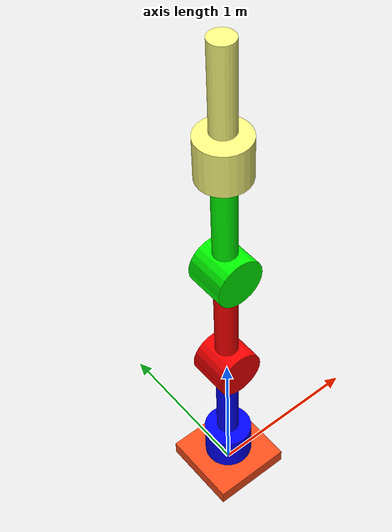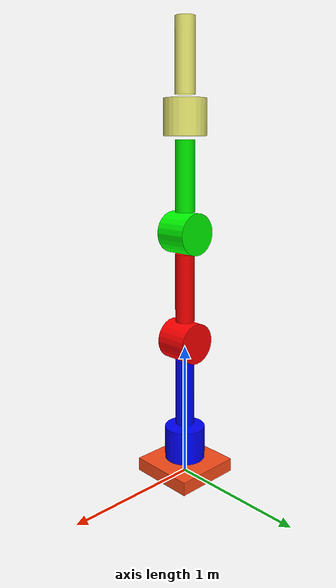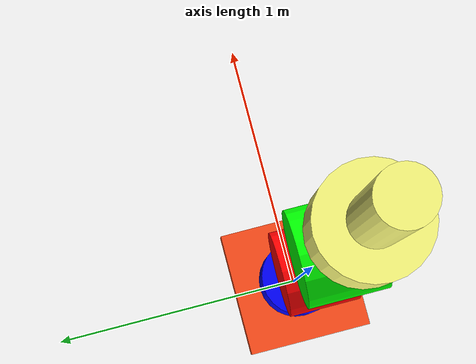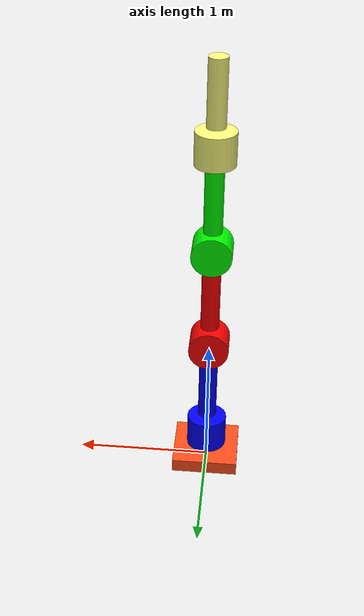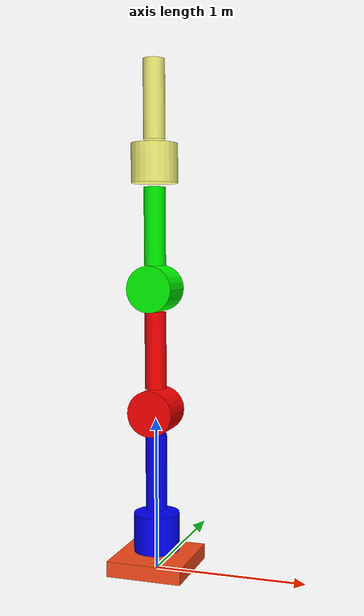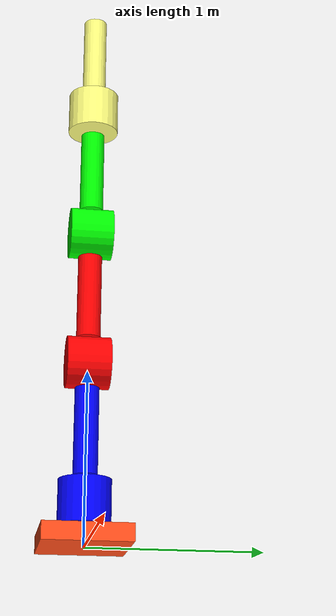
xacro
<?xml version="1.0"?>
<robot xmlns:xacro="http://www.ros.org/wiki/xacro">
    <xacro:include filename="inertia.xacro" />

    <xacro:property name="PI" value="3.1416" />
    <xacro:property name="effort" value="30" />
    <xacro:property name="velocity" value="10" />

    <xacro:property name="box_base" value="0.5" />
    <xacro:property name="box_length" value="0.1" />

    <xacro:property name="link_cylinder_radius" value="0.07" />
    <xacro:property name="link_cylinder_length" value="0.50" />

    <xacro:property name="joint_cylinder_radius" value="0.15" />
    <xacro:property name="joint_cylinder_length" value="0.25" />

    <xacro:property name="link_to_joint_distance" value="${joint_cylinder_radius + link_cylinder_length}" />
    <xacro:property name="joint_to_link_distance" value="${joint_cylinder_radius}" />

    <xacro:macro name="default_transmission" params="number">
        <transmission name="transmission_${number}">
            <type>transmission_interface/SimpleTransmission</type>
            <joint name="joint_${number}">
                <hardwareInterface>hardware_interface/PositionJointInterface</hardwareInterface>
            </joint>
            <actuator name="motor_${number}">
                <hardwareInterface>hardware_interface/PositionJointInterface</hardwareInterface>
                <mechanicalReduction>1</mechanicalReduction>
            </actuator>
        </transmission>
    </xacro:macro>

    <link name="world" />

    <link name="base_link" />

     <joint name="world_joint" type="fixed">
        <parent link="world"/>
        <child link="base_link"/>
        <origin xyz="0.0 0.0 0.0" />
        <axis xyz= "0 0 0" />
    </joint>

    <link name="base_footprint" >
        <visual>
            <origin xyz="0.0 0.0 ${box_length/2}"/>
            <geometry>
                <box size="${box_base} ${box_base} ${box_length}"/>
            </geometry>
            <material name="orange">
                <color rgba="1 0.3 0.1 1"/>
            </material>
        </visual>
        <collision>
            <origin xyz="0.0 0.0 ${box_length}"/>
            <geometry>
                <box size="${box_base} ${box_base} ${box_length}"/>
            </geometry>
        </collision>
        <xacro:inertial_box mass="1.25" x="${box_base}" y="${box_base}" z="${box_length}">
            <origin xyz="0.0 0.0 ${box_length}" rpy="0 0 0"/>
        </xacro:inertial_box>
    </link>

    <gazebo reference="base_footprint">
        <material>Gazebo/Orange</material>
    </gazebo>

    <joint name="base_joint" type="fixed">
        <parent link="base_link"/>
        <child link="base_footprint"/>
        <origin xyz="0.0 0.0 0.0"/>
        <axis xyz= "0 0 0" />
    </joint>

    <link name="link_1" >
        <visual>
            <origin xyz= "0.0 0.0 0.0" rpy= "0.0 0.0 0.0"/>
            <geometry>
                <cylinder radius="${joint_cylinder_radius}" length="${joint_cylinder_length}"/>
            </geometry>
            <material name="blue">
                <color rgba="0 0 1 1"/>
            </material>
        </visual>
        <collision>
            <origin xyz= "0.0 0.0 0.0" rpy= "${PI/2} 0.0 0.0"/>
            <geometry>
                <cylinder radius="${joint_cylinder_radius}"  length="${joint_cylinder_length}"/>
            </geometry>
        </collision>
        <xacro:inertial_cylinder mass= "0.1" length= "${joint_cylinder_length}" radius="${joint_cylinder_radius}" >
            <origin xyz= "0.0 0.0 0.0" rpy= "${PI/2} 0.0 0.0"/>
        </xacro:inertial_cylinder>
    </link>

    <gazebo reference="link_1">
        <material>Gazebo/Blue</material>
    </gazebo>

    <joint name="joint_1" type="revolute">
        <parent link="base_link"/>
        <child link="link_1"/>
        <origin xyz="0.0 0.0 ${box_length + joint_cylinder_radius}" />
        <limit lower="-${PI/2}" upper="${PI/2}" effort="${effort}" velocity="${velocity}"/>
        <axis xyz= "0 0 1" />
        <dynamics friction="1.5" damping="1.5" />
    </joint>

    <link name="link_1_fixed_part" >
        <visual>
            <origin xyz="0.0 0.0 ${link_cylinder_length/2}" rpy="0 0 0"/>
            <geometry>
                <cylinder radius="${link_cylinder_radius}" length="${link_cylinder_length}"/>
            </geometry>
            <material name="blue">
                <color rgba="0 0 1 1"/>
            </material>
        </visual>
        <collision>
            <origin xyz= "0.0 0.0 ${link_cylinder_length/2}" rpy="0 0 0"/>
            <geometry>
                <cylinder radius="${link_cylinder_radius}" length="${link_cylinder_length}"/>
            </geometry>
        </collision>
        <xacro:inertial_cylinder mass= "0.25" length= "${link_cylinder_length}" radius="${link_cylinder_radius}" >
            <origin xyz= "0.0 0.0 ${link_cylinder_length/2}" rpy="0 0 0"/>
        </xacro:inertial_cylinder>
    </link>

    <gazebo reference="link_1_fixed_part">
        <material>Gazebo/Blue</material>
    </gazebo>

    <joint name="link_1_fixed_joint" type="fixed">
        <parent link="link_1"/>
        <child link="link_1_fixed_part"/>
        <origin xyz="0.0 0.0 ${joint_to_link_distance}" />
        <axis xyz= "0 0 0" />
        <dynamics friction="1.5" damping="1.5" />
    </joint>

    <link name="link_2" >
        <visual>
            <origin xyz= "0.0 0.0 0.0" rpy= "${PI/2} 0.0 0.0"/>
            <geometry>
                <cylinder radius="${joint_cylinder_radius}" length="${joint_cylinder_length}"/>
            </geometry>
            <material name="red">
                <color rgba="1 0 0 1"/>
            </material>
        </visual>
        <collision>
            <origin xyz= "0.0 0.0 0.0" rpy= "${PI/2} 0.0 0.0"/>
            <geometry>
                <cylinder radius="${joint_cylinder_radius}"  length="${joint_cylinder_length}"/>
            </geometry>
        </collision>
        <xacro:inertial_cylinder mass= "0.1" length= "${joint_cylinder_length}" radius="${joint_cylinder_radius}" >
            <origin xyz= "0.0 0.0 0.0" rpy= "${PI/2} 0.0 0.0"/>
        </xacro:inertial_cylinder>
     </link>

    <gazebo reference="link_2">
        <material>Gazebo/Red</material>
    </gazebo>

    <joint name="joint_2" type="revolute">
        <parent link="link_1_fixed_part"/>
        <child link="link_2"/>
        <origin xyz="0.0 0.0 ${link_to_joint_distance}" />
        <axis xyz="0 1 0"/>
        <limit lower="-${PI/2}" upper="${PI/2}" effort="${effort}" velocity="${velocity}"/>
        <axis xyz= "0 1 0" />
        <dynamics friction="1.5" damping="1.5" />
    </joint>

    <link name="link_2_fixed_part" >
        <visual>
            <origin xyz= "0.0 0.0 ${link_cylinder_length/2}" rpy="0 0 0" />
            <geometry>
                <cylinder radius="${link_cylinder_radius}" length="${link_cylinder_length}"/>
            </geometry>
            <material name="red">
                <color rgba="1 0 0 1"/>
            </material>
        </visual>
        <collision>
            <origin xyz= "0.0 0.0 ${link_cylinder_length/2}" rpy="0 0 0" />
            <geometry>
                <cylinder radius="${link_cylinder_radius}" length="${link_cylinder_length}"/>
            </geometry>
        </collision>
        <xacro:inertial_cylinder mass= "0.25" length= "${link_cylinder_length}" radius="${link_cylinder_radius}" >
            <origin xyz= "0.0 0.0 ${link_cylinder_length/2}" rpy="0 0 0" />
        </xacro:inertial_cylinder>
    </link>

    <gazebo reference="link_2_fixed_part">
        <material>Gazebo/Red</material>
    </gazebo>

    <joint name="link_2_fixed_joint" type="fixed">
        <parent link="link_2"/>
        <child link="link_2_fixed_part"/>
        <origin xyz="0.0 0.0 ${joint_to_link_distance}" />
        <axis xyz= "0 0 0" />
        <dynamics friction="1.5" damping="1.5" />
    </joint>

    <link name="link_3" >
        <visual>
            <origin xyz= "0.0 0.0 0.0" rpy= "${PI/2} 0.0 0.0"/>
            <geometry>
                <cylinder radius="${joint_cylinder_radius}" length="${joint_cylinder_length}"/>
            </geometry>
            <material name="green">
                <color rgba="0 1 0 1"/>
            </material>
        </visual>
        <collision>
            <origin xyz= "0.0 0.0 0.0" rpy= "${PI/2} 0.0 0.0"/>
            <geometry>
                <cylinder radius="${joint_cylinder_radius}"  length="${joint_cylinder_length}"/>
            </geometry>
        </collision>
        <xacro:inertial_cylinder mass= "0.1" length= "${joint_cylinder_length}" radius="${joint_cylinder_radius}" >
            <origin xyz= "0.0 0.0 0.0" rpy= "${PI/2} 0.0 0.0"/>
        </xacro:inertial_cylinder>
    </link>

    <gazebo reference="link_3">
        <material>Gazebo/Green</material>
    </gazebo>

    <joint name="joint_3" type="revolute">
        <parent link="link_2_fixed_part"/>
        <child link="link_3"/>
        <origin xyz="0.0 0.0 ${link_to_joint_distance}" />
        <axis xyz="0 1 0"/>
        <limit lower="-${PI/2}" upper="${PI/2}" effort="${effort}" velocity="${velocity}"/>
        <axis xyz= "0 1 0" />
        <dynamics friction="1.5" damping="1.5" />
    </joint>

    <link name="link_3_fixed_part" >
        <visual>
            <origin xyz= "0.0 0.0 ${link_cylinder_length/2}" rpy="0 0 0" />
            <geometry>
                <cylinder radius="${link_cylinder_radius}" length="${link_cylinder_length}"/>
            </geometry>
            <material name="green">
                <color rgba="0 1 0 1"/>
            </material>
        </visual>
        <collision>
            <origin xyz= "0.0 0.0 ${link_cylinder_length/2}" rpy="0 0 0" />
            <geometry>
                <cylinder radius="${link_cylinder_radius}" length="${link_cylinder_length}"/>
            </geometry>
        </collision>
        <xacro:inertial_cylinder mass= "0.25" length= "${link_cylinder_length}" radius="${link_cylinder_radius}" >
            <origin xyz= "0.0 0.0 ${link_cylinder_length/2}" rpy="0 0 0" />
        </xacro:inertial_cylinder>
    </link>

    <gazebo reference="link_3_fixed_part">
        <material>Gazebo/Green</material>
    </gazebo>

    <joint name="link_3_fixed_joint" type="fixed">
        <parent link="link_3"/>
        <child link="link_3_fixed_part"/>
        <origin xyz="0.0 0.0 ${joint_to_link_distance}" />
        <axis xyz= "0 0 0" />
        <dynamics friction="1.5" damping="1.5" />
    </joint>

    <link name="link_4" >
        <visual>
            <origin xyz= "0.0 0.0 0.0" rpy= "0 0.0 0.0"/>
            <geometry>
                <cylinder radius="${joint_cylinder_radius}" length="${joint_cylinder_length}"/>
            </geometry>
            <material name="banana" >
    	    <color rgba="1.0 1.0 0.49411764705882355 1.0" />
            </material>
        </visual>
        <collision>
            <origin xyz= "0.0 0.0 0.0" rpy= "${PI/2} 0.0 0.0"/>
            <geometry>
                <cylinder radius="${joint_cylinder_radius}"  length="${joint_cylinder_length}"/>
            </geometry>
        </collision>
        <xacro:inertial_cylinder mass= "0.1" length= "${joint_cylinder_length}" radius="${joint_cylinder_radius}" >
            <origin xyz= "0.0 0.0 0.0" rpy= "${PI/2} 0.0 0.0"/>
        </xacro:inertial_cylinder>
    </link>

    <gazebo reference="link_4">
        <material>Gazebo/Yellow</material>
    </gazebo>

    <joint name="joint_4" type="revolute">
        <parent link="link_3_fixed_part"/>
        <child link="link_4"/>
        <origin xyz="0.0 0.0 ${link_to_joint_distance}" />
        <axis xyz="0 0 1"/>
        <limit lower="-${PI/2}" upper="${PI/2}" effort="${effort}" velocity="${velocity}"/>
        <axis xyz= "0 0 1" />
        <dynamics friction="1.5" damping="1.5" />
    </joint>

    <link name="link_4_fixed_part" >
        <visual>
            <origin xyz= "0.0 0.0 ${link_cylinder_length/2}" rpy="0 0 0" />
            <geometry>
                <cylinder radius="${link_cylinder_radius}" length="${link_cylinder_length}"/>
            </geometry>
            <material name="banana" >
    	    <color rgba="1.0 1.0 0.49411764705882355 1.0" />
            </material>
        </visual>
        <collision>
            <origin xyz= "0.0 0.0 ${link_cylinder_length/2}" rpy="0 0 0" />
            <geometry>
                <cylinder radius="${link_cylinder_radius}" length="${link_cylinder_length}"/>
            </geometry>
        </collision>
        <xacro:inertial_cylinder mass= "0.25" length= "${link_cylinder_length}" radius="${link_cylinder_radius}" >
            <origin xyz= "0.0 0.0 ${link_cylinder_length/2}" rpy="0 0 0" />
        </xacro:inertial_cylinder>
    </link>

    <gazebo reference="link_4_fixed_part">
        <material>Gazebo/Yellow</material>
    </gazebo>

    <joint name="link_4_fixed_joint" type="fixed">
        <parent link="link_4"/>
        <child link="link_4_fixed_part"/>
        <origin xyz="0.0 0.0 ${joint_to_link_distance}" />
        <axis xyz= "0 0 0" />
        <dynamics friction="1.5" damping="1.5" />
    </joint>

    <!-- Transmisiones de Cada Actuador con su Respectivo Joint -->

    <xacro:default_transmission number="1"/>
    <xacro:default_transmission number="2"/>
    <xacro:default_transmission number="3"/>
    <xacro:default_transmission number="4"/>
</robot>
